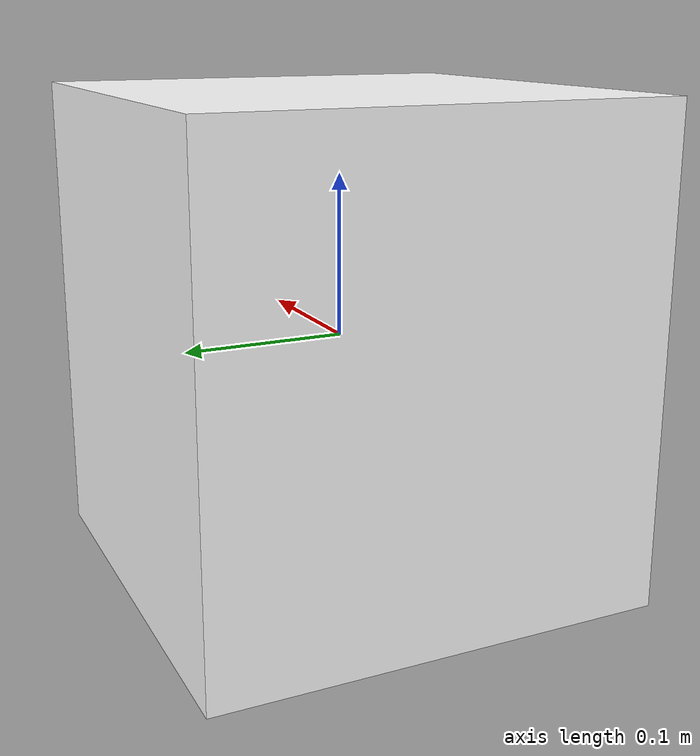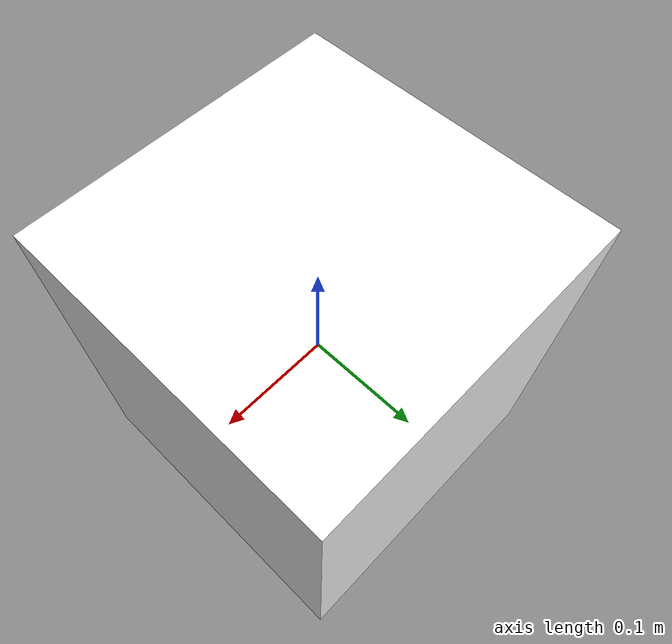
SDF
<?xml version="1.0"?>
<sdf version="1.7">
  <model name="iiwa_pedestal">
    <link name="pedestal">
      <inertial>
        <mass>10.0</mass>
        <inertia>
          <ixx>1.0</ixx><ixy>0</ixy><ixz>0</ixz>
          <iyy>1.0</iyy><iyz>0</iyz><izz>1.0</izz>
        </inertia>
      </inertial>
      <visual name="visual">
        <geometry>
          <box><size>0.278 0.278 0.300</size></box>
        </geometry>
        <material>
          <diffuse>1.0 1.0 1.0 1.0</diffuse>
        </material>
      </visual>
      <collision name="collision">
        <geometry>
          <box><size>0.278 0.278 0.300</size></box>
        </geometry>
        <drake:proximity_properties>
          <drake:rigid_hydroelastic/>
          <drake:hunt_crossley_dissipation>1.25</drake:hunt_crossley_dissipation>
          <drake:mesh_resolution_hint>0.01</drake:mesh_resolution_hint>
          <drake:mu_dynamic>0.5</drake:mu_dynamic>
          <drake:mu_static>0.5</drake:mu_static>
        </drake:proximity_properties>
      </collision>
    </link>
  </model>
</sdf>
